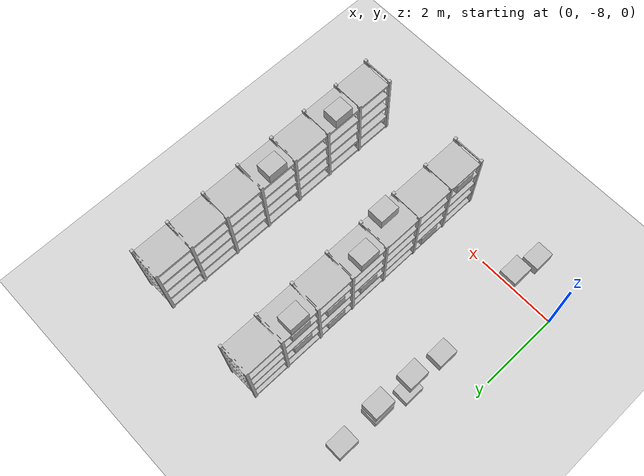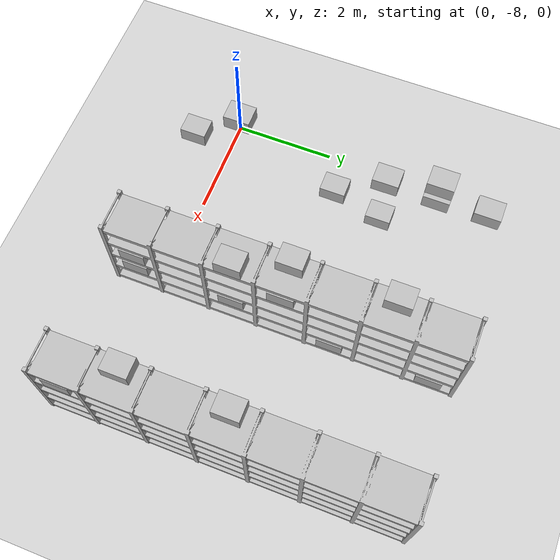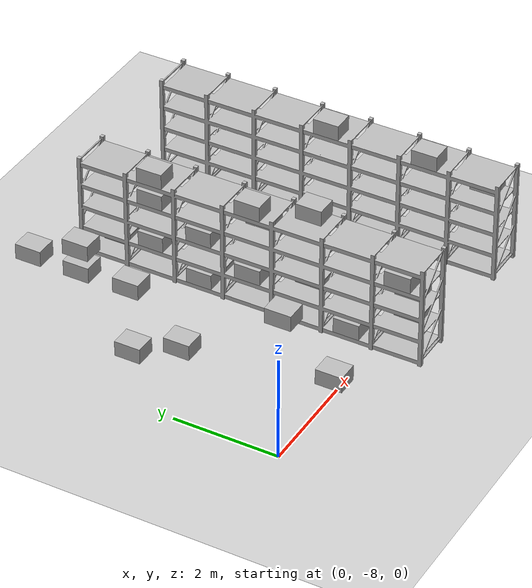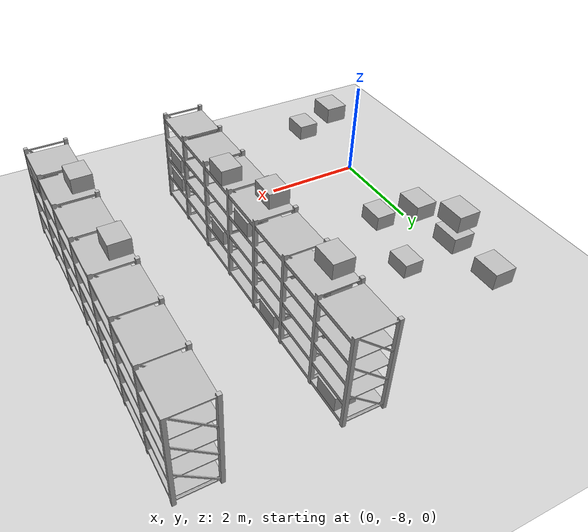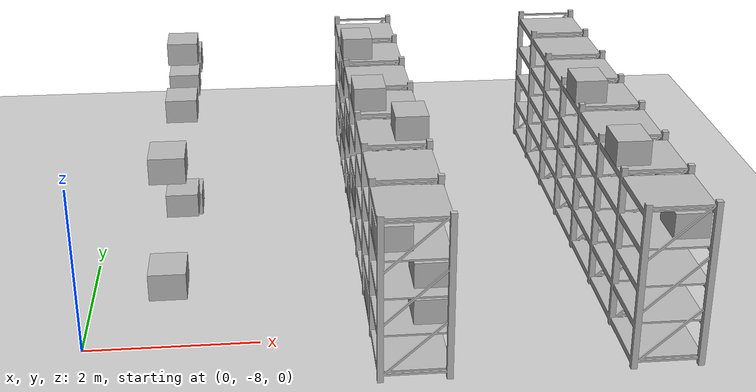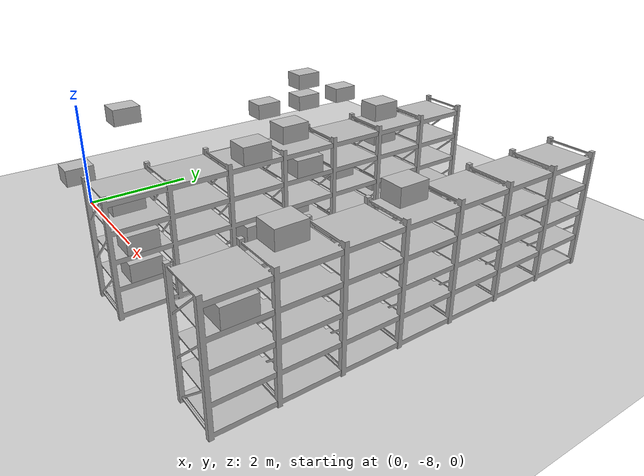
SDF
<sdf version="1.6">
 <world name="default">
  <model name="ground_plane">
   <static>1</static>
   <link name="link">
    <collision name="collision">
     <geometry><plane><normal>0 0 1</normal><size>100 100</size></plane></geometry>
     <surface><friction><ode><mu>100</mu><mu2>50</mu2></ode></friction></surface>
    </collision>
    <visual name="visual">
     <cast_shadows>0</cast_shadows>
     <geometry><plane><normal>0 0 1</normal><size>100 100</size></plane></geometry>
     <material>
      <script><uri>file://media/materials/scripts/gazebo.material</uri><name>Gazebo/Grey</name></script>
     </material>
    </visual>
   </link>
  </model>
  <model name="box_A_015">
   <pose>1.0649 -8.4445 1.152 0 0 0</pose>
   <link name="link">
    <inertial>
     <mass>2.0</mass>
     <inertia><ixx>0.05667</ixx><iyy>0.04167</iyy><izz>0.06833</izz><ixy>0</ixy><ixz>0</ixz><iyz>0</iyz></inertia>
    </inertial>
    <collision name="collision">
     <geometry><box><size>0.4 0.5 0.3</size></box></geometry>
     <surface><friction><ode><mu>1.0</mu><mu2>1.0</mu2></ode></friction></surface>
    </collision>
    <visual name="visual">
     <cast_shadows>0</cast_shadows>
     <geometry><box><size>0.4 0.5 0.3</size></box></geometry>
     <material>
      <script>
       <uri>model://labeled_boxes/materials/scripts</uri>
       <uri>model://labeled_boxes/materials/textures</uri>
       <name>LabeledBox/A-015</name>
      </script>
     </material>
    </visual>
   </link>
  </model>
  <model name="box_A_017">
   <pose>1.0649 -7.4906 2.052 0 0 0</pose>
   <link name="link">
    <inertial>
     <mass>2.0</mass>
     <inertia><ixx>0.05667</ixx><iyy>0.04167</iyy><izz>0.06833</izz><ixy>0</ixy><ixz>0</ixz><iyz>0</iyz></inertia>
    </inertial>
    <collision name="collision">
     <geometry><box><size>0.4 0.5 0.3</size></box></geometry>
     <surface><friction><ode><mu>1.0</mu><mu2>1.0</mu2></ode></friction></surface>
    </collision>
    <visual name="visual">
     <cast_shadows>0</cast_shadows>
     <geometry><box><size>0.4 0.5 0.3</size></box></geometry>
     <material>
      <script>
       <uri>model://labeled_boxes/materials/scripts</uri>
       <uri>model://labeled_boxes/materials/textures</uri>
       <name>LabeledBox/A-017</name>
      </script>
     </material>
    </visual>
   </link>
  </model>
  <model name="box_A_021">
   <pose>1.0649 -5.5477 0.702 0 0 0</pose>
   <link name="link">
    <inertial>
     <mass>2.0</mass>
     <inertia><ixx>0.05667</ixx><iyy>0.04167</iyy><izz>0.06833</izz><ixy>0</ixy><ixz>0</ixz><iyz>0</iyz></inertia>
    </inertial>
    <collision name="collision">
     <geometry><box><size>0.4 0.5 0.3</size></box></geometry>
     <surface><friction><ode><mu>1.0</mu><mu2>1.0</mu2></ode></friction></surface>
    </collision>
    <visual name="visual">
     <cast_shadows>0</cast_shadows>
     <geometry><box><size>0.4 0.5 0.3</size></box></geometry>
     <material>
      <script>
       <uri>model://labeled_boxes/materials/scripts</uri>
       <uri>model://labeled_boxes/materials/textures</uri>
       <name>LabeledBox/A-021</name>
      </script>
     </material>
    </visual>
   </link>
  </model>
  <model name="box_A_023">
   <pose>1.0649 -4.5763 0.252 0 0 0</pose>
   <link name="link">
    <inertial>
     <mass>2.0</mass>
     <inertia><ixx>0.05667</ixx><iyy>0.04167</iyy><izz>0.06833</izz><ixy>0</ixy><ixz>0</ixz><iyz>0</iyz></inertia>
    </inertial>
    <collision name="collision">
     <geometry><box><size>0.4 0.5 0.3</size></box></geometry>
     <surface><friction><ode><mu>1.0</mu><mu2>1.0</mu2></ode></friction></surface>
    </collision>
    <visual name="visual">
     <cast_shadows>0</cast_shadows>
     <geometry><box><size>0.4 0.5 0.3</size></box></geometry>
     <material>
      <script>
       <uri>model://labeled_boxes/materials/scripts</uri>
       <uri>model://labeled_boxes/materials/textures</uri>
       <name>LabeledBox/A-023</name>
      </script>
     </material>
    </visual>
   </link>
  </model>
  <model name="box_A_025">
   <pose>1.0649 -4.5763 1.602 0 0 0</pose>
   <link name="link">
    <inertial>
     <mass>2.0</mass>
     <inertia><ixx>0.05667</ixx><iyy>0.04167</iyy><izz>0.06833</izz><ixy>0</ixy><ixz>0</ixz><iyz>0</iyz></inertia>
    </inertial>
    <collision name="collision">
     <geometry><box><size>0.4 0.5 0.3</size></box></geometry>
     <surface><friction><ode><mu>1.0</mu><mu2>1.0</mu2></ode></friction></surface>
    </collision>
    <visual name="visual">
     <cast_shadows>0</cast_shadows>
     <geometry><box><size>0.4 0.5 0.3</size></box></geometry>
     <material>
      <script>
       <uri>model://labeled_boxes/materials/scripts</uri>
       <uri>model://labeled_boxes/materials/textures</uri>
       <name>LabeledBox/A-025</name>
      </script>
     </material>
    </visual>
   </link>
  </model>
  <model name="box_A_027">
   <pose>1.0649 -3.6049 1.602 0 0 0</pose>
   <link name="link">
    <inertial>
     <mass>2.0</mass>
     <inertia><ixx>0.05667</ixx><iyy>0.04167</iyy><izz>0.06833</izz><ixy>0</ixy><ixz>0</ixz><iyz>0</iyz></inertia>
    </inertial>
    <collision name="collision">
     <geometry><box><size>0.4 0.5 0.3</size></box></geometry>
     <surface><friction><ode><mu>1.0</mu><mu2>1.0</mu2></ode></friction></surface>
    </collision>
    <visual name="visual">
     <cast_shadows>0</cast_shadows>
     <geometry><box><size>0.4 0.5 0.3</size></box></geometry>
     <material>
      <script>
       <uri>model://labeled_boxes/materials/scripts</uri>
       <uri>model://labeled_boxes/materials/textures</uri>
       <name>LabeledBox/A-027</name>
      </script>
     </material>
    </visual>
   </link>
  </model>
  <model name="box_A_028">
   <pose>1.0649 -3.6049 2.052 0 0 0</pose>
   <link name="link">
    <inertial>
     <mass>2.0</mass>
     <inertia><ixx>0.05667</ixx><iyy>0.04167</iyy><izz>0.06833</izz><ixy>0</ixy><ixz>0</ixz><iyz>0</iyz></inertia>
    </inertial>
    <collision name="collision">
     <geometry><box><size>0.4 0.5 0.3</size></box></geometry>
     <surface><friction><ode><mu>1.0</mu><mu2>1.0</mu2></ode></friction></surface>
    </collision>
    <visual name="visual">
     <cast_shadows>0</cast_shadows>
     <geometry><box><size>0.4 0.5 0.3</size></box></geometry>
     <material>
      <script>
       <uri>model://labeled_boxes/materials/scripts</uri>
       <uri>model://labeled_boxes/materials/textures</uri>
       <name>LabeledBox/A-028</name>
      </script>
     </material>
    </visual>
   </link>
  </model>
  <model name="box_A_030">
   <pose>1.0649 -2.6509 1.602 0 0 0</pose>
   <link name="link">
    <inertial>
     <mass>2.0</mass>
     <inertia><ixx>0.05667</ixx><iyy>0.04167</iyy><izz>0.06833</izz><ixy>0</ixy><ixz>0</ixz><iyz>0</iyz></inertia>
    </inertial>
    <collision name="collision">
     <geometry><box><size>0.4 0.5 0.3</size></box></geometry>
     <surface><friction><ode><mu>1.0</mu><mu2>1.0</mu2></ode></friction></surface>
    </collision>
    <visual name="visual">
     <cast_shadows>0</cast_shadows>
     <geometry><box><size>0.4 0.5 0.3</size></box></geometry>
     <material>
      <script>
       <uri>model://labeled_boxes/materials/scripts</uri>
       <uri>model://labeled_boxes/materials/textures</uri>
       <name>LabeledBox/A-030</name>
      </script>
     </material>
    </visual>
   </link>
  </model>
  <include>
   <name>rack_A3_0</name>
   <uri>model://warehouse_rack_5lvl_7bay</uri>
   <pose>3.6599 -5.5477 0 0 0 0</pose>
  </include>
  <model name="box_A_048">
   <pose>3.8649 -8.4445 0.702 0 0 0</pose>
   <link name="link">
    <inertial>
     <mass>2.0</mass>
     <inertia><ixx>0.05667</ixx><iyy>0.04167</iyy><izz>0.06833</izz><ixy>0</ixy><ixz>0</ixz><iyz>0</iyz></inertia>
    </inertial>
    <collision name="collision">
     <geometry><box><size>0.4 0.5 0.3</size></box></geometry>
     <surface><friction><ode><mu>1.0</mu><mu2>1.0</mu2></ode></friction></surface>
    </collision>
    <visual name="visual">
     <cast_shadows>0</cast_shadows>
     <geometry><box><size>0.4 0.5 0.3</size></box></geometry>
     <material>
      <script>
       <uri>model://labeled_boxes/materials/scripts</uri>
       <uri>model://labeled_boxes/materials/textures</uri>
       <name>LabeledBox/A-048</name>
      </script>
     </material>
    </visual>
   </link>
  </model>
  <model name="box_A_049">
   <pose>3.8649 -8.4445 1.152 0 0 0</pose>
   <link name="link">
    <inertial>
     <mass>2.0</mass>
     <inertia><ixx>0.05667</ixx><iyy>0.04167</iyy><izz>0.06833</izz><ixy>0</ixy><ixz>0</ixz><iyz>0</iyz></inertia>
    </inertial>
    <collision name="collision">
     <geometry><box><size>0.4 0.5 0.3</size></box></geometry>
     <surface><friction><ode><mu>1.0</mu><mu2>1.0</mu2></ode></friction></surface>
    </collision>
    <visual name="visual">
     <cast_shadows>0</cast_shadows>
     <geometry><box><size>0.4 0.5 0.3</size></box></geometry>
     <material>
      <script>
       <uri>model://labeled_boxes/materials/scripts</uri>
       <uri>model://labeled_boxes/materials/textures</uri>
       <name>LabeledBox/A-049</name>
      </script>
     </material>
    </visual>
   </link>
  </model>
  <model name="box_A_050">
   <pose>3.4549 -8.4445 1.602 0 0 0</pose>
   <link name="link">
    <inertial>
     <mass>2.0</mass>
     <inertia><ixx>0.05667</ixx><iyy>0.04167</iyy><izz>0.06833</izz><ixy>0</ixy><ixz>0</ixz><iyz>0</iyz></inertia>
    </inertial>
    <collision name="collision">
     <geometry><box><size>0.4 0.5 0.3</size></box></geometry>
     <surface><friction><ode><mu>1.0</mu><mu2>1.0</mu2></ode></friction></surface>
    </collision>
    <visual name="visual">
     <cast_shadows>0</cast_shadows>
     <geometry><box><size>0.4 0.5 0.3</size></box></geometry>
     <material>
      <script>
       <uri>model://labeled_boxes/materials/scripts</uri>
       <uri>model://labeled_boxes/materials/textures</uri>
       <name>LabeledBox/A-050</name>
      </script>
     </material>
    </visual>
   </link>
  </model>
  <model name="box_A_051">
   <pose>3.4549 -7.4906 0.252 0 0 0</pose>
   <link name="link">
    <inertial>
     <mass>2.0</mass>
     <inertia><ixx>0.05667</ixx><iyy>0.04167</iyy><izz>0.06833</izz><ixy>0</ixy><ixz>0</ixz><iyz>0</iyz></inertia>
    </inertial>
    <collision name="collision">
     <geometry><box><size>0.4 0.5 0.3</size></box></geometry>
     <surface><friction><ode><mu>1.0</mu><mu2>1.0</mu2></ode></friction></surface>
    </collision>
    <visual name="visual">
     <cast_shadows>0</cast_shadows>
     <geometry><box><size>0.4 0.5 0.3</size></box></geometry>
     <material>
      <script>
       <uri>model://labeled_boxes/materials/scripts</uri>
       <uri>model://labeled_boxes/materials/textures</uri>
       <name>LabeledBox/A-051</name>
      </script>
     </material>
    </visual>
   </link>
  </model>
  <model name="box_A_052">
   <pose>3.8649 -6.5191 0.702 0 0 0</pose>
   <link name="link">
    <inertial>
     <mass>2.0</mass>
     <inertia><ixx>0.05667</ixx><iyy>0.04167</iyy><izz>0.06833</izz><ixy>0</ixy><ixz>0</ixz><iyz>0</iyz></inertia>
    </inertial>
    <collision name="collision">
     <geometry><box><size>0.4 0.5 0.3</size></box></geometry>
     <surface><friction><ode><mu>1.0</mu><mu2>1.0</mu2></ode></friction></surface>
    </collision>
    <visual name="visual">
     <cast_shadows>0</cast_shadows>
     <geometry><box><size>0.4 0.5 0.3</size></box></geometry>
     <material>
      <script>
       <uri>model://labeled_boxes/materials/scripts</uri>
       <uri>model://labeled_boxes/materials/textures</uri>
       <name>LabeledBox/A-052</name>
      </script>
     </material>
    </visual>
   </link>
  </model>
  <model name="box_A_053">
   <pose>3.8649 -6.5191 2.052 0 0 0</pose>
   <link name="link">
    <inertial>
     <mass>2.0</mass>
     <inertia><ixx>0.05667</ixx><iyy>0.04167</iyy><izz>0.06833</izz><ixy>0</ixy><ixz>0</ixz><iyz>0</iyz></inertia>
    </inertial>
    <collision name="collision">
     <geometry><box><size>0.4 0.5 0.3</size></box></geometry>
     <surface><friction><ode><mu>1.0</mu><mu2>1.0</mu2></ode></friction></surface>
    </collision>
    <visual name="visual">
     <cast_shadows>0</cast_shadows>
     <geometry><box><size>0.4 0.5 0.3</size></box></geometry>
     <material>
      <script>
       <uri>model://labeled_boxes/materials/scripts</uri>
       <uri>model://labeled_boxes/materials/textures</uri>
       <name>LabeledBox/A-053</name>
      </script>
     </material>
    </visual>
   </link>
  </model>
  <model name="box_A_054">
   <pose>3.4549 -5.5477 0.702 0 0 0</pose>
   <link name="link">
    <inertial>
     <mass>2.0</mass>
     <inertia><ixx>0.05667</ixx><iyy>0.04167</iyy><izz>0.06833</izz><ixy>0</ixy><ixz>0</ixz><iyz>0</iyz></inertia>
    </inertial>
    <collision name="collision">
     <geometry><box><size>0.4 0.5 0.3</size></box></geometry>
     <surface><friction><ode><mu>1.0</mu><mu2>1.0</mu2></ode></friction></surface>
    </collision>
    <visual name="visual">
     <cast_shadows>0</cast_shadows>
     <geometry><box><size>0.4 0.5 0.3</size></box></geometry>
     <material>
      <script>
       <uri>model://labeled_boxes/materials/scripts</uri>
       <uri>model://labeled_boxes/materials/textures</uri>
       <name>LabeledBox/A-054</name>
      </script>
     </material>
    </visual>
   </link>
  </model>
  <model name="box_A_055">
   <pose>3.8649 -5.5477 1.602 0 0 0</pose>
   <link name="link">
    <inertial>
     <mass>2.0</mass>
     <inertia><ixx>0.05667</ixx><iyy>0.04167</iyy><izz>0.06833</izz><ixy>0</ixy><ixz>0</ixz><iyz>0</iyz></inertia>
    </inertial>
    <collision name="collision">
     <geometry><box><size>0.4 0.5 0.3</size></box></geometry>
     <surface><friction><ode><mu>1.0</mu><mu2>1.0</mu2></ode></friction></surface>
    </collision>
    <visual name="visual">
     <cast_shadows>0</cast_shadows>
     <geometry><box><size>0.4 0.5 0.3</size></box></geometry>
     <material>
      <script>
       <uri>model://labeled_boxes/materials/scripts</uri>
       <uri>model://labeled_boxes/materials/textures</uri>
       <name>LabeledBox/A-055</name>
      </script>
     </material>
    </visual>
   </link>
  </model>
  <model name="box_A_056">
   <pose>3.4549 -5.5477 2.052 0 0 0</pose>
   <link name="link">
    <inertial>
     <mass>2.0</mass>
     <inertia><ixx>0.05667</ixx><iyy>0.04167</iyy><izz>0.06833</izz><ixy>0</ixy><ixz>0</ixz><iyz>0</iyz></inertia>
    </inertial>
    <collision name="collision">
     <geometry><box><size>0.4 0.5 0.3</size></box></geometry>
     <surface><friction><ode><mu>1.0</mu><mu2>1.0</mu2></ode></friction></surface>
    </collision>
    <visual name="visual">
     <cast_shadows>0</cast_shadows>
     <geometry><box><size>0.4 0.5 0.3</size></box></geometry>
     <material>
      <script>
       <uri>model://labeled_boxes/materials/scripts</uri>
       <uri>model://labeled_boxes/materials/textures</uri>
       <name>LabeledBox/A-056</name>
      </script>
     </material>
    </visual>
   </link>
  </model>
  <model name="box_A_057">
   <pose>3.4549 -4.5763 0.252 0 0 0</pose>
   <link name="link">
    <inertial>
     <mass>2.0</mass>
     <inertia><ixx>0.05667</ixx><iyy>0.04167</iyy><izz>0.06833</izz><ixy>0</ixy><ixz>0</ixz><iyz>0</iyz></inertia>
    </inertial>
    <collision name="collision">
     <geometry><box><size>0.4 0.5 0.3</size></box></geometry>
     <surface><friction><ode><mu>1.0</mu><mu2>1.0</mu2></ode></friction></surface>
    </collision>
    <visual name="visual">
     <cast_shadows>0</cast_shadows>
     <geometry><box><size>0.4 0.5 0.3</size></box></geometry>
     <material>
      <script>
       <uri>model://labeled_boxes/materials/scripts</uri>
       <uri>model://labeled_boxes/materials/textures</uri>
       <name>LabeledBox/A-057</name>
      </script>
     </material>
    </visual>
   </link>
  </model>
  <model name="box_A_058">
   <pose>3.8649 -4.5763 0.252 0 0 0</pose>
   <link name="link">
    <inertial>
     <mass>2.0</mass>
     <inertia><ixx>0.05667</ixx><iyy>0.04167</iyy><izz>0.06833</izz><ixy>0</ixy><ixz>0</ixz><iyz>0</iyz></inertia>
    </inertial>
    <collision name="collision">
     <geometry><box><size>0.4 0.5 0.3</size></box></geometry>
     <surface><friction><ode><mu>1.0</mu><mu2>1.0</mu2></ode></friction></surface>
    </collision>
    <visual name="visual">
     <cast_shadows>0</cast_shadows>
     <geometry><box><size>0.4 0.5 0.3</size></box></geometry>
     <material>
      <script>
       <uri>model://labeled_boxes/materials/scripts</uri>
       <uri>model://labeled_boxes/materials/textures</uri>
       <name>LabeledBox/A-058</name>
      </script>
     </material>
    </visual>
   </link>
  </model>
  <model name="box_A_059">
   <pose>3.4549 -4.5763 1.152 0 0 0</pose>
   <link name="link">
    <inertial>
     <mass>2.0</mass>
     <inertia><ixx>0.05667</ixx><iyy>0.04167</iyy><izz>0.06833</izz><ixy>0</ixy><ixz>0</ixz><iyz>0</iyz></inertia>
    </inertial>
    <collision name="collision">
     <geometry><box><size>0.4 0.5 0.3</size></box></geometry>
     <surface><friction><ode><mu>1.0</mu><mu2>1.0</mu2></ode></friction></surface>
    </collision>
    <visual name="visual">
     <cast_shadows>0</cast_shadows>
     <geometry><box><size>0.4 0.5 0.3</size></box></geometry>
     <material>
      <script>
       <uri>model://labeled_boxes/materials/scripts</uri>
       <uri>model://labeled_boxes/materials/textures</uri>
       <name>LabeledBox/A-059</name>
      </script>
     </material>
    </visual>
   </link>
  </model>
  <model name="box_A_060">
   <pose>3.4549 -3.6049 0.702 0 0 0</pose>
   <link name="link">
    <inertial>
     <mass>2.0</mass>
     <inertia><ixx>0.05667</ixx><iyy>0.04167</iyy><izz>0.06833</izz><ixy>0</ixy><ixz>0</ixz><iyz>0</iyz></inertia>
    </inertial>
    <collision name="collision">
     <geometry><box><size>0.4 0.5 0.3</size></box></geometry>
     <surface><friction><ode><mu>1.0</mu><mu2>1.0</mu2></ode></friction></surface>
    </collision>
    <visual name="visual">
     <cast_shadows>0</cast_shadows>
     <geometry><box><size>0.4 0.5 0.3</size></box></geometry>
     <material>
      <script>
       <uri>model://labeled_boxes/materials/scripts</uri>
       <uri>model://labeled_boxes/materials/textures</uri>
       <name>LabeledBox/A-060</name>
      </script>
     </material>
    </visual>
   </link>
  </model>
  <model name="box_A_061">
   <pose>3.4549 -3.6049 1.602 0 0 0</pose>
   <link name="link">
    <inertial>
     <mass>2.0</mass>
     <inertia><ixx>0.05667</ixx><iyy>0.04167</iyy><izz>0.06833</izz><ixy>0</ixy><ixz>0</ixz><iyz>0</iyz></inertia>
    </inertial>
    <collision name="collision">
     <geometry><box><size>0.4 0.5 0.3</size></box></geometry>
     <surface><friction><ode><mu>1.0</mu><mu2>1.0</mu2></ode></friction></surface>
    </collision>
    <visual name="visual">
     <cast_shadows>0</cast_shadows>
     <geometry><box><size>0.4 0.5 0.3</size></box></geometry>
     <material>
      <script>
       <uri>model://labeled_boxes/materials/scripts</uri>
       <uri>model://labeled_boxes/materials/textures</uri>
       <name>LabeledBox/A-061</name>
      </script>
     </material>
    </visual>
   </link>
  </model>
  <model name="box_A_062">
   <pose>3.4549 -3.6049 2.052 0 0 0</pose>
   <link name="link">
    <inertial>
     <mass>2.0</mass>
     <inertia><ixx>0.05667</ixx><iyy>0.04167</iyy><izz>0.06833</izz><ixy>0</ixy><ixz>0</ixz><iyz>0</iyz></inertia>
    </inertial>
    <collision name="collision">
     <geometry><box><size>0.4 0.5 0.3</size></box></geometry>
     <surface><friction><ode><mu>1.0</mu><mu2>1.0</mu2></ode></friction></surface>
    </collision>
    <visual name="visual">
     <cast_shadows>0</cast_shadows>
     <geometry><box><size>0.4 0.5 0.3</size></box></geometry>
     <material>
      <script>
       <uri>model://labeled_boxes/materials/scripts</uri>
       <uri>model://labeled_boxes/materials/textures</uri>
       <name>LabeledBox/A-062</name>
      </script>
     </material>
    </visual>
   </link>
  </model>
  <model name="box_A_063">
   <pose>3.8649 -2.6509 0.252 0 0 0</pose>
   <link name="link">
    <inertial>
     <mass>2.0</mass>
     <inertia><ixx>0.05667</ixx><iyy>0.04167</iyy><izz>0.06833</izz><ixy>0</ixy><ixz>0</ixz><iyz>0</iyz></inertia>
    </inertial>
    <collision name="collision">
     <geometry><box><size>0.4 0.5 0.3</size></box></geometry>
     <surface><friction><ode><mu>1.0</mu><mu2>1.0</mu2></ode></friction></surface>
    </collision>
    <visual name="visual">
     <cast_shadows>0</cast_shadows>
     <geometry><box><size>0.4 0.5 0.3</size></box></geometry>
     <material>
      <script>
       <uri>model://labeled_boxes/materials/scripts</uri>
       <uri>model://labeled_boxes/materials/textures</uri>
       <name>LabeledBox/A-063</name>
      </script>
     </material>
    </visual>
   </link>
  </model>
  <include>
   <name>rack_A4_0</name>
   <uri>model://warehouse_rack_5lvl_7bay</uri>
   <pose>6.4599 -5.5477 0 0 0 0</pose>
  </include>
  <model name="box_A_081">
   <pose>6.6649 -8.4445 1.602 0 0 0</pose>
   <link name="link">
    <inertial>
     <mass>2.0</mass>
     <inertia><ixx>0.05667</ixx><iyy>0.04167</iyy><izz>0.06833</izz><ixy>0</ixy><ixz>0</ixz><iyz>0</iyz></inertia>
    </inertial>
    <collision name="collision">
     <geometry><box><size>0.4 0.5 0.3</size></box></geometry>
     <surface><friction><ode><mu>1.0</mu><mu2>1.0</mu2></ode></friction></surface>
    </collision>
    <visual name="visual">
     <cast_shadows>0</cast_shadows>
     <geometry><box><size>0.4 0.5 0.3</size></box></geometry>
     <material>
      <script>
       <uri>model://labeled_boxes/materials/scripts</uri>
       <uri>model://labeled_boxes/materials/textures</uri>
       <name>LabeledBox/A-081</name>
      </script>
     </material>
    </visual>
   </link>
  </model>
  <model name="box_A_082">
   <pose>6.2549 -7.4906 2.052 0 0 0</pose>
   <link name="link">
    <inertial>
     <mass>2.0</mass>
     <inertia><ixx>0.05667</ixx><iyy>0.04167</iyy><izz>0.06833</izz><ixy>0</ixy><ixz>0</ixz><iyz>0</iyz></inertia>
    </inertial>
    <collision name="collision">
     <geometry><box><size>0.4 0.5 0.3</size></box></geometry>
     <surface><friction><ode><mu>1.0</mu><mu2>1.0</mu2></ode></friction></surface>
    </collision>
    <visual name="visual">
     <cast_shadows>0</cast_shadows>
     <geometry><box><size>0.4 0.5 0.3</size></box></geometry>
     <material>
      <script>
       <uri>model://labeled_boxes/materials/scripts</uri>
       <uri>model://labeled_boxes/materials/textures</uri>
       <name>LabeledBox/A-082</name>
      </script>
     </material>
    </visual>
   </link>
  </model>
  <model name="box_A_086">
   <pose>6.2549 -5.5477 2.052 0 0 0</pose>
   <link name="link">
    <inertial>
     <mass>2.0</mass>
     <inertia><ixx>0.05667</ixx><iyy>0.04167</iyy><izz>0.06833</izz><ixy>0</ixy><ixz>0</ixz><iyz>0</iyz></inertia>
    </inertial>
    <collision name="collision">
     <geometry><box><size>0.4 0.5 0.3</size></box></geometry>
     <surface><friction><ode><mu>1.0</mu><mu2>1.0</mu2></ode></friction></surface>
    </collision>
    <visual name="visual">
     <cast_shadows>0</cast_shadows>
     <geometry><box><size>0.4 0.5 0.3</size></box></geometry>
     <material>
      <script>
       <uri>model://labeled_boxes/materials/scripts</uri>
       <uri>model://labeled_boxes/materials/textures</uri>
       <name>LabeledBox/A-086</name>
      </script>
     </material>
    </visual>
   </link>
  </model>
 </world>
</sdf>
